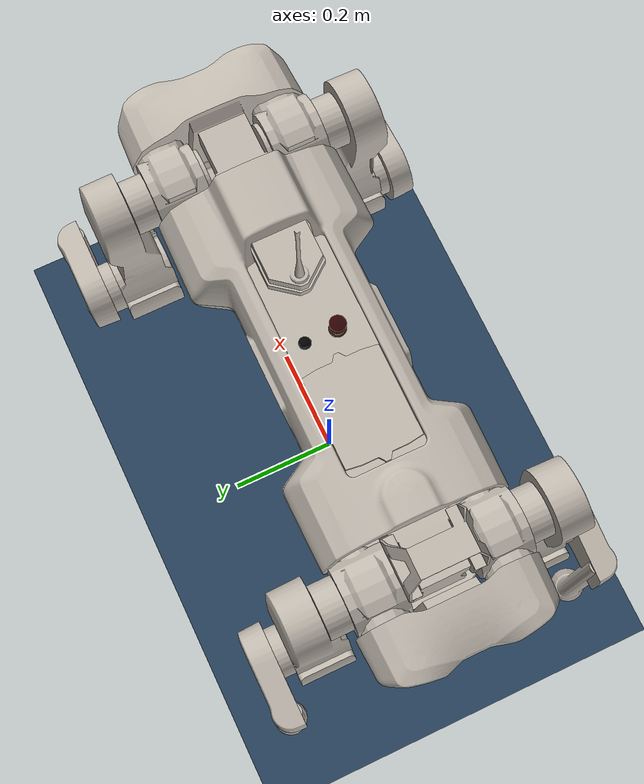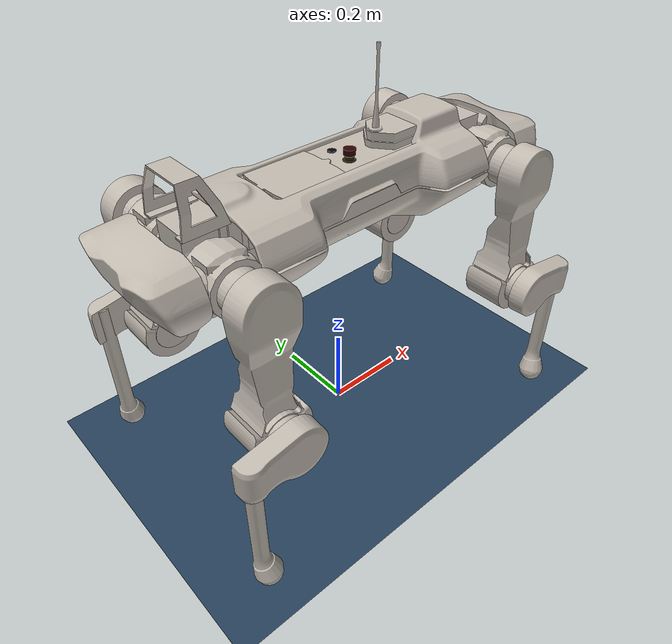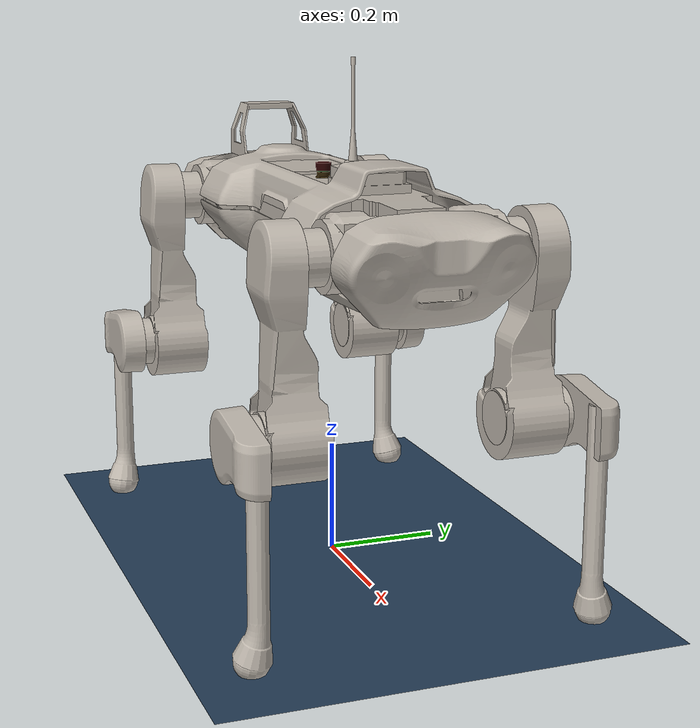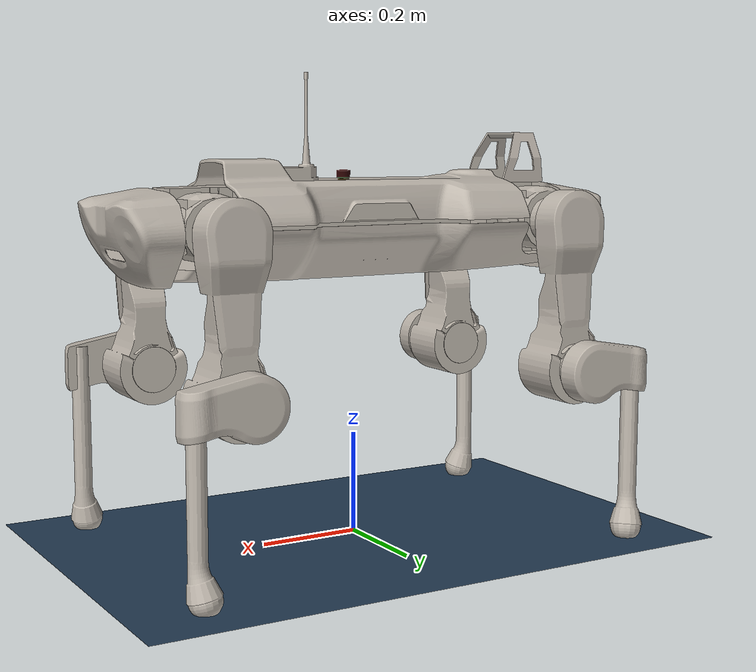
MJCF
<mujoco model="anymal_c">
  <compiler angle="radian" meshdir="assets" texturedir="assets" autolimits="true"/>
  <option timestep="0.002" iterations="1" ls_iterations="4" solver="Newton">
      <flag eulerdamp="disable"/>
  </option>
  <option cone="pyramidal" impratio="100"/>

  <visual>
    <headlight diffuse="0.6 0.6 0.6" ambient="0.3 0.3 0.3" specular="0 0 0"/>
    <rgba haze="0.15 0.25 0.35 1"/>
    <global azimuth="120" elevation="-20"/>
  </visual>

  <default>
    <material specular="0" shininess="0.25"/>
    <default class="anymal_c">
      <joint damping="1" frictionloss="0.1"/>

      <default class="visual">
        <geom type="mesh" contype="0" conaffinity="0" group="2"/>
        <default class="visual_zflip">
          <geom quat="0 0 0 1"/>
        </default>
      </default>
      <default class="collision">
        <geom group="3" type="capsule"/>
        <default class="foot">
          <geom type="sphere" size="0.03" pos="0 0 0.02325" priority="1" solimp="0.015 1 0.031" condim="3"
            friction="0.8 0.02 0.01"/>
        </default>
      </default>

      <default class="affine">
        <general biastype="affine" gainprm="1 0 0 0 0 0 0 0 0 0" biasprm="0 0 0 0 0 0 0 0 0 0" forcerange="-80.0 80.0" ctrlrange="-80 80"/>
      </default>

    </default>
  </default>

  <asset>

    <material name="black_plastic" rgba="0.007 0.007 0.007 1"/>
    <material name="green" rgba="0.052 0.178 0.033 1"/>
    <material name="red" rgba="0.178 0.006 0.005 1"/>
    <material name="yellow" rgba="0.178 0.119 0.006 1"/>
    <material name="lwl" rgba="0.8 0.8 0.8 1"/>
    <material name="base" texture="base"/>
    <material name="top_shell" texture="top_shell"/>
    <material name="bottom_shell" texture="bottom_shell"/>
    <material name="hip_l" texture="hip_l"/>
    <material name="thigh" texture="thigh"/>
    <material name="shank_l" texture="shank_l"/>
    <material name="foot" texture="foot"/>
    <material name="hip_r" texture="hip_r"/>
    <material name="shank" texture="shank_r"/>
    <material name="hatch" texture="hatch"/>
    <material name="remote" texture="remote"/>
    <material name="handle" texture="handle"/>
    <material name="face" texture="face"/>
    <material name="depth_camera" texture="depth_camera"/>
    <material name="wide_angle_camera" texture="wide_angle_camera"/>
    <material name="battery" texture="battery"/>
    <material name="lidar_cage" texture="lidar_cage"/>
    <material name="lidar" texture="lidar"/>
    <material name="drive" texture="drive"/>

    <texture type="2d" name="base" file="base.png"/>
    <texture type="2d" name="top_shell" file="top_shell.png"/>
    <texture type="2d" name="bottom_shell" file="bottom_shell.png"/>
    <texture type="2d" name="remote" file="remote.png"/>
    <texture type="2d" name="hatch" file="hatch.png"/>
    <texture type="2d" name="handle" file="handle.png"/>
    <texture type="2d" name="face" file="face.png"/>
    <texture type="2d" name="battery" file="battery.png"/>
    <texture type="2d" name="lidar_cage" file="lidar_cage.png"/>
    <texture type="2d" name="depth_camera" file="depth_camera.png"/>
    <texture type="2d" name="wide_angle_camera" file="wide_angle_camera.png"/>
    <texture type="2d" name="lidar" file="lidar.png"/>
    <texture type="2d" name="drive" file="drive.png"/>
    <texture type="2d" name="hip_l" file="hip_l.png"/>
    <texture type="2d" name="shank_l" file="shank_l.png"/>
    <texture type="2d" name="foot" file="foot.png"/>
    <texture type="2d" name="thigh" file="thigh.png"/>
    <texture type="2d" name="shank_r" file="shank_r.png"/>
    <texture type="2d" name="hip_r" file="hip_r.png"/>

    <mesh file="base_0.obj"/>
    <mesh file="base_1.obj"/>
    <mesh file="base_2.obj"/>
    <mesh file="base_3.obj"/>
    <mesh file="base_4.obj"/>
    <mesh file="base_5.obj"/>
    <mesh file="top_shell.obj"/>
    <mesh file="bottom_shell.obj"/>
    <mesh file="remote.obj"/>
    <mesh file="handle.obj"/>
    <mesh file="face.obj"/>
    <mesh file="wide_angle_camera.obj"/>
    <mesh file="depth_camera.obj"/>
    <mesh file="battery.obj"/>
    <mesh file="lidar_cage.obj"/>
    <mesh file="lidar.obj"/>
    <mesh file="drive.obj"/>
    <mesh file="hip_l.obj"/>
    <mesh file="thigh.obj"/>
    <mesh file="shank_l.obj"/>
    <mesh file="foot.obj"/>
    <mesh file="hip_r.obj"/>
    <mesh file="hatch.obj"/>
    <mesh file="shank_r.obj"/>
    <!-- Skybox makes the sky light blue rather than black. Groundplane makes an infinite ground area. -->
    <texture type="skybox" builtin="gradient" rgb1="0.3 0.5 0.7" rgb2="0 0 0" width="512" height="3072"/>
    <texture type="2d" name="groundplane" builtin="checker" mark="edge" rgb1="0.2 0.3 0.4" rgb2="0.1 0.2 0.3"
      markrgb="0.8 0.8 0.8" width="300" height="300"/>
    <material name="groundplane" texture="groundplane" texuniform="true" texrepeat="5 5" reflectance="0.2"/>
  </asset>

  <worldbody>
    <geom name="floor" size="0 0 0.05" type="plane" conaffinity="1" material="groundplane"/>
    <!-- This light uniformly lights the entire environment. -->
    <light pos="0 0 1.5" dir="0 0 -1" directional="true"/>
    <body name="base" pos="0 0 0.62" quat="0 0 0 1" childclass="anymal_c">
      <camera name="track" pos="0 -2.5 0" xyaxes="1 0 0 0 1 5" mode="trackcom"/>
      <joint armature="0" axis="1 0 0" damping="0" limited="false" name="rootx" pos="0 0 -0.62" stiffness="0" type="slide"/>
      <joint armature="0" axis="0 0 1" damping="0" limited="false" name="rootz" pos="0 0 -0.62" ref="0.62" stiffness="0" type="slide"/>
      <joint armature="0" axis="0 1 0" damping="0" limited="false" name="rooty" pos="0 0 0" stiffness="0" type="hinge"/>
      <inertial mass="19.2035" pos="0.0025 0 0.0502071" quat="0.5 0.5 0.5 0.5" diaginertia="0.639559 0.624031 0.217374"/>
      <geom mesh="base_0" material="green" class="visual"/>
      <geom mesh="base_1" material="yellow" class="visual"/>
      <geom mesh="base_2" material="red" class="visual"/>
      <geom mesh="base_3" material="black_plastic" class="visual"/>
      <geom mesh="base_4" material="lwl" class="visual"/>
      <geom mesh="base_5" material="base" class="visual"/>
      <geom material="top_shell" mesh="top_shell" class="visual"/>
      <geom material="bottom_shell" mesh="bottom_shell" class="visual"/>
      <geom material="remote" mesh="remote" class="visual"/>
      <geom material="handle" mesh="handle" class="visual"/>
      <geom pos="0.4145 0 0" material="face" mesh="face" class="visual"/>
      <geom pos="-0.4145 0 0" material="face" mesh="face" class="visual_zflip"/>
      <geom material="battery" mesh="battery" class="visual"/>
      <geom pos="0.116 0 0.073" material="hatch" mesh="hatch" class="visual"/>
      <body name="LF_HIP" pos="0.2999 0.104 0" quat="0.258819 0.965926 0 0">
        <inertial mass="2.781" pos="0.0566606 -0.015294 -0.00829784" quat="-0.127978 0.709783 -0.135278 0.679359"
          diaginertia="0.00585729 0.00491868 0.00329081"/>
        <joint name="LF_HAA" axis="1 0 0" range="-0.01 0.01"/>
        <geom quat="0.258819 -0.965926 0 0" material="hip_l" mesh="hip_l" class="visual"/>
        <geom pos="0.0599 -0.0725816 -0.041905" quat="0.183013 -0.683013 0.683013 0.183013" material="drive"
          mesh="drive" class="visual"/>
        <body name="LF_THIGH" pos="0.0599 -0.0725816 -0.041905" quat="0.183013 -0.683013 0.683013 0.183013">
          <inertial mass="3.071" pos="0.0308147 4.64995e-05 -0.245696" quat="0.993166 -0.00515309 -0.0806592 0.0841972"
            diaginertia="0.03025 0.0298943 0.00418465"/>
          <joint name="LF_HFE" axis="1 0 0" range="0.26179939 0.78539816"/>
          <geom quat="1 0 0 -1" material="thigh" mesh="thigh" class="visual"/>
          <geom pos="0.1003 0 -0.285" material="drive" mesh="drive" class="visual"/>
          <body name="LF_SHANK" pos="0.1003 0 -0.285">
            <inertial mass="0.58842" pos="0.005462 -0.0612528 -0.0806598"
              quat="0.992934 -0.115904 -0.00105487 -0.0254421" diaginertia="0.0101637 0.00923838 0.00111927"/>
            <joint name="LF_KFE" axis="1 0 0" range="-1.30899694 -0.78539816"/>
            <geom quat="1 0 0 -1" material="shank_l" mesh="shank_l" class="visual"/>
            <geom pos="0.01305 -0.08795 -0.33797" quat="0.382683 0 0 -0.92388" material="foot" mesh="foot"
              class="visual"/>
            <geom class="foot" pos="0.01305 -0.08795 -0.31547"/>
          </body>
        </body>
      </body>
      <body name="RF_HIP" pos="0.2999 -0.104 0" quat="0.258819 -0.965926 0 0">
        <inertial mass="2.781" pos="0.0567633 0.015294 -0.00829784" quat="0.13524 0.679072 0.127985 0.710065"
          diaginertia="0.00585928 0.0049205 0.00329064"/>
        <joint name="RF_HAA" axis="1 0 0" range="-0.01 0.01"/>
        <geom quat="0.258819 0.965926 0 0" material="hip_r" mesh="hip_r" class="visual"/>
        <geom pos="0.0599 0.0725816 -0.041905" quat="0.183013 0.683013 0.683013 -0.183013" material="drive" mesh="drive"
          class="visual"/>
        <body name="RF_THIGH" pos="0.0599 0.0725816 -0.041905" quat="0.183013 0.683013 0.683013 -0.183013">
          <inertial mass="3.071" pos="0.0308147 4.64995e-05 -0.245696" quat="0.992775 -0.00512735 -0.0806685 0.0886811"
            diaginertia="0.0302511 0.0298933 0.0041845"/>
          <joint name="RF_HFE" axis="-1 0 0" range="0.26179939 0.78539816"/>
          <geom quat="1 0 0 -1" material="thigh" mesh="thigh" class="visual"/>
          <geom pos="0.1003 0 -0.285" material="drive" mesh="drive" class="visual"/>
          <body name="RF_SHANK" pos="0.1003 0 -0.285">
            <inertial mass="0.58842" pos="0.005462 0.0612528 -0.0806598" quat="0.992934 0.115904 -0.00105487 0.0254421"
              diaginertia="0.0101637 0.00923838 0.00111927"/>
            <joint name="RF_KFE" axis="-1 0 0" range="-1.30899694 -0.78539816"/>
            <geom quat="1 0 0 1" material="shank" mesh="shank_r" class="visual"/>
            <geom pos="0.01305 0.08795 -0.33797" quat="0.382683 0 0 0.92388" material="foot" mesh="foot" class="visual"/>
            <geom class="foot" pos="0.01305 0.08795 -0.31547"/>
          </body>
        </body>
      </body>
      <body name="LH_HIP" pos="-0.2999 0.104 0" quat="0 0 0.965926 -0.258819">
        <inertial mass="2.781" pos="0.0567633 0.015294 -0.00829784" quat="0.13524 0.679072 0.127985 0.710065"
          diaginertia="0.00585928 0.0049205 0.00329064"/>
        <joint name="LH_HAA" axis="-1 0 0" range="-0.01 0.01"/>
        <geom quat="-0.258819 -0.965926 0 0" material="hip_r" mesh="hip_r" class="visual"/>
        <geom pos="0.0599 0.0725816 -0.041905" quat="0.183013 0.683013 0.683013 -0.183013" material="drive" mesh="drive"
          class="visual"/>
        <body name="LH_THIGH" pos="0.0599 0.0725816 -0.041905" quat="0.183013 0.683013 0.683013 -0.183013">
          <inertial mass="3.071" pos="0.0308147 4.64995e-05 -0.245696" quat="0.992775 -0.00512735 -0.0806685 0.0886811"
            diaginertia="0.0302511 0.0298933 0.0041845"/>
          <joint name="LH_HFE" axis="1 0 0" range="-0.78539816 -0.26179939"/>
          <geom quat="1 0 0 -1" material="thigh" mesh="thigh" class="visual"/>
          <geom pos="0.1003 0 -0.285" material="drive" mesh="drive" class="visual"/>
          <body name="LH_SHANK" pos="0.1003 0 -0.285">
            <inertial mass="0.58842" pos="0.005462 0.0612528 -0.0806598" quat="0.992934 0.115904 -0.00105487 0.0254421"
              diaginertia="0.0101637 0.00923838 0.00111927"/>
            <joint name="LH_KFE" axis="1 0 0" range="0.78539816 1.30899694"/>
            <geom quat="-1 0 0 -1" material="shank" mesh="shank_r" class="visual"/>
            <geom pos="0.01305 0.08795 -0.33797" quat="-0.382683 0 0 -0.92388" material="foot" mesh="foot"
              class="visual"/>
            <geom class="foot" pos="0.01305 0.08795 -0.31547"/>
          </body>
        </body>
      </body>
      <body name="RH_HIP" pos="-0.2999 -0.104 0" quat="0 0 -0.965926 -0.258819">
        <inertial mass="2.781" pos="0.0566606 -0.015294 -0.00829784" quat="-0.127978 0.709783 -0.135278 0.679359"
          diaginertia="0.00585729 0.00491868 0.00329081"/>
        <joint name="RH_HAA" axis="-1 0 0" range="-0.01 0.01"/>
        <geom quat="-0.258819 0.965926 0 0" material="hip_l" mesh="hip_l" class="visual"/>
        <geom pos="0.0599 -0.0725816 -0.041905" quat="-0.183013 0.683013 -0.683013 -0.183013" material="drive"
          mesh="drive" class="visual"/>
        <body name="RH_THIGH" pos="0.0599 -0.0725816 -0.041905" quat="-0.183013 0.683013 -0.683013 -0.183013">
          <inertial mass="3.071" pos="0.0308147 4.64995e-05 -0.245696" quat="0.993166 -0.00515309 -0.0806592 0.0841972"
            diaginertia="0.03025 0.0298943 0.00418465"/>
          <joint name="RH_HFE" axis="-1 0 0" range="-0.78539816 -0.26179939"/>
          <geom quat="1 0 0 -1" material="thigh" mesh="thigh" class="visual"/>
          <geom pos="0.1003 0 -0.285" material="drive" mesh="drive" class="visual"/>
          <body name="RH_SHANK" pos="0.1003 0 -0.285">
            <inertial mass="0.58842" pos="0.005462 -0.0612528 -0.0806598"
              quat="0.992934 -0.115904 -0.00105487 -0.0254421" diaginertia="0.0101637 0.00923838 0.00111927"/>
            <joint name="RH_KFE" axis="-1 0 0" range="0.78539816 1.30899694"/>
            <geom quat="1 0 0 -1" material="shank_l" mesh="shank_l" class="visual"/>
            <geom pos="0.01305 -0.08795 -0.33797" quat="0.382683 0 0 -0.92388" material="foot" mesh="foot"
              class="visual"/>
            <geom class="foot" pos="0.01305 -0.08795 -0.31547"/>
          </body>
        </body>
      </body>
    </body>
  </worldbody>

  <contact>
    <exclude body1="base" body2="LF_THIGH"/>
    <exclude body1="base" body2="RF_THIGH"/>
    <exclude body1="base" body2="LH_THIGH"/>
    <exclude body1="base" body2="RH_THIGH"/>
  </contact>

  <actuator>
    <general class="affine" joint="LF_HAA" name="LF_HAA" ctrlrange="-0.01 0.01"/>
    <general class="affine" joint="LF_HFE" name="LF_HFE"/>
    <general class="affine" joint="LF_KFE" name="LF_KFE"/>
    <general class="affine" joint="RF_HAA" name="RF_HAA" ctrlrange="-0.01 0.01"/>
    <general class="affine" joint="RF_HFE" name="RF_HFE"/>
    <general class="affine" joint="RF_KFE" name="RF_KFE"/>
    <general class="affine" joint="LH_HAA" name="LH_HAA" ctrlrange="-0.01 0.01"/>
    <general class="affine" joint="LH_HFE" name="LH_HFE"/>
    <general class="affine" joint="LH_KFE" name="LH_KFE"/>
    <general class="affine" joint="RH_HAA" name="RH_HAA" ctrlrange="-0.01 0.01"/>
    <general class="affine" joint="RH_HFE" name="RH_HFE"/>
    <general class="affine" joint="RH_KFE" name="RH_KFE"/>
  </actuator>

  <keyframe>
    <key name="standing" qpos='0.0 0.506 0.0 0.0 0.5235987755982988 -1.0471975511965976 0.0 0.5235987755982988 -1.0471975511965976 0.0 -0.5235987755982988 1.0471975511965976 0.0 -0.5235987755982988 1.0471975511965976'
      />
  </keyframe>
</mujoco>
